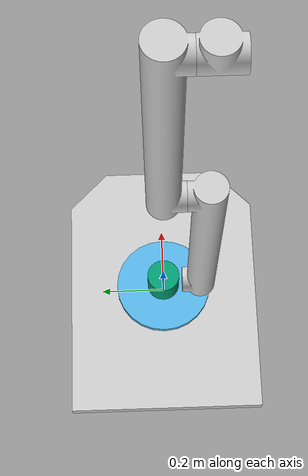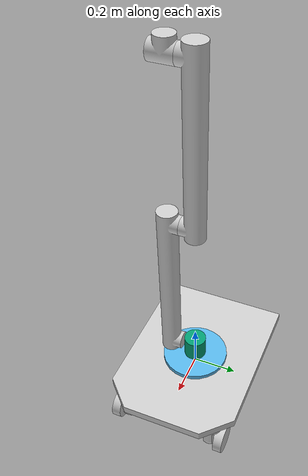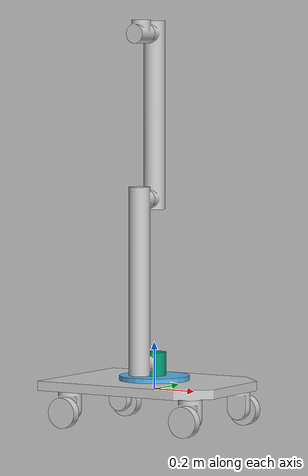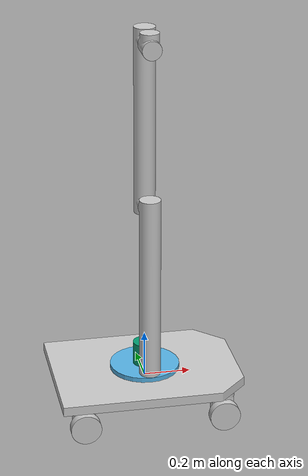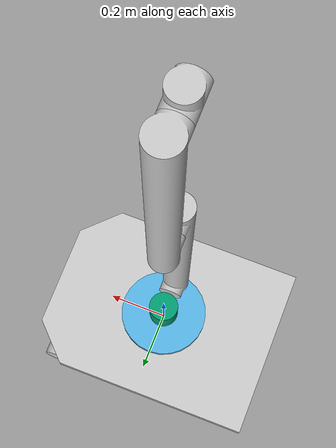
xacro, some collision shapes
<?xml version="1.0" ?>
<robot name="mobile_manipulator" xmlns:xacro="http://ros.org/wiki/xacro">

  <xacro:include filename="$(find robots_description)/urdf/mobile_robot_macro.xacro"/>
  <xacro:mobile_robot prefix=""/>

  <xacro:include filename="$(find robots_description)/urdf/robot_5r_macro.xacro"/>
  <xacro:robot_5r prefix="arm_"/>

  <joint name="base_link_to_arm_base_link" type="fixed">
    <parent link="base_link"/>
    <child link="arm_base_link"/>
    <origin rpy="0.0 0.0 0.0" xyz="0.0 0.0 0.040"/>
  </joint>

</robot>

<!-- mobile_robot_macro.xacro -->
<robot xmlns:xacro="http://www.ros.org/wiki/xacro">

  <xacro:macro name="mobile_robot" params="prefix">

	  <link name="${prefix}base_link">
	    <visual>
	      <!--undercarriage-->
	      <origin rpy="0.0 -0.0 -1.570796326794897" xyz="0.0 0.0 0.0"/>
	      <geometry>
		<mesh filename="package://robots_description/meshes/undercarriage.dae"/>
	      </geometry>
	    </visual>
	    <collision>
	      <origin rpy="0.0 -0.0 -1.570796326794897" xyz="0.0 2.84217e-17 0.0075"/>
	      <geometry>
		<box size="0.3 0.4 0.025"/>
	      </geometry>
	    </collision>
	    <inertial>
	      <mass value="0.0"/>
	      <origin rpy="0.0 -0.0 0.0" xyz="0.0 0.0 0.0"/>
	      <inertia ixx="0.0" ixy="0.0" ixz="0.0" iyy="0.0" iyz="0.0" izz="0.0"/>
	    </inertial>
	  </link>
	  <link name="${prefix}hub_hr">
	    <visual>
	      <!--hub-->
	      <origin rpy="0.0 -0.0 -1.570796326794897" xyz="0.0 0.0 0.0"/>
	      <geometry>
		<mesh filename="package://robots_description/meshes/hub.dae"/>
	      </geometry>
	    </visual>
	    <collision>
	      <origin rpy="0.0 -0.0 -1.570796326794897" xyz="0.0 0.0 0.0325"/>
	      <geometry>
		<box size="0.05 0.05 0.065"/>
	      </geometry>
	    </collision>
	    <inertial>
	      <mass value="0.0"/>
	      <origin rpy="0.0 -0.0 0.0" xyz="0.0 0.0 0.0"/>
	      <inertia ixx="0.0" ixy="0.0" ixz="0.0" iyy="0.0" iyz="0.0" izz="0.0"/>
	    </inertial>
	  </link>
	  <link name="${prefix}hub_hl">
	    <visual>
	      <!--hub-->
	      <origin rpy="0.0 -0.0 -1.570796326794897" xyz="0.0 0.0 0.0"/>
	      <geometry>
		<mesh filename="package://robots_description/meshes/hub.dae"/>
	      </geometry>
	    </visual>
	    <collision>
	      <origin rpy="0.0 -0.0 -1.570796326794897" xyz="0.0 0.0 0.0325"/>
	      <geometry>
		<box size="0.05 0.05 0.065"/>
	      </geometry>
	    </collision>
	    <inertial>
	      <mass value="0.0"/>
	      <origin rpy="0.0 -0.0 0.0" xyz="0.0 0.0 0.0"/>
	      <inertia ixx="0.0" ixy="0.0" ixz="0.0" iyy="0.0" iyz="0.0" izz="0.0"/>
	    </inertial>
	  </link>
	  <link name="${prefix}hub_br">
	    <visual>
	      <!--hub-->
	      <origin rpy="0.0 -0.0 -1.570796326794897" xyz="0.0 0.0 0.0"/>
	      <geometry>
		<mesh filename="package://robots_description/meshes/hub.dae"/>
	      </geometry>
	    </visual>
	    <collision>
	      <origin rpy="0.0 -0.0 -1.570796326794897" xyz="0.0 0.0 0.0325"/>
	      <geometry>
		<box size="0.05 0.05 0.065"/>
	      </geometry>
	    </collision>
	    <inertial>
	      <mass value="0.0"/>
	      <origin rpy="0.0 -0.0 0.0" xyz="0.0 0.0 0.0"/>
	      <inertia ixx="0.0" ixy="0.0" ixz="0.0" iyy="0.0" iyz="0.0" izz="0.0"/>
	    </inertial>
	  </link>
	  <link name="${prefix}hub_bl">
	    <visual>
	      <!--hub-->
	      <origin rpy="0.0 -0.0 -1.570796326794897" xyz="0.0 0.0 0.0"/>
	      <geometry>
		<mesh filename="package://robots_description/meshes/hub.dae"/>
	      </geometry>
	    </visual>
	    <collision>
	      <origin rpy="0.0 -0.0 -1.570796326794897" xyz="0.0 0.0 0.0325"/>
	      <geometry>
		<box size="0.05 0.05 0.065"/>
	      </geometry>
	    </collision>
	    <inertial>
	      <mass value="0.0"/>
	      <origin rpy="0.0 -0.0 0.0" xyz="0.0 0.0 0.0"/>
	      <inertia ixx="0.0" ixy="0.0" ixz="0.0" iyy="0.0" iyz="0.0" izz="0.0"/>
	    </inertial>
	  </link>
	  <link name="${prefix}wheel_hr">
	    <visual>
	      <!--wheel-->
	      <origin rpy="3.141592653589793 -0.0 -1.570796326794897" xyz="0.0 0.0 0.01"/>
	      <geometry>
		<mesh filename="package://robots_description/meshes/wheel.dae"/>
	      </geometry>
	    </visual>
	    <collision>
	      <!--wheel_collision-->
	      <origin rpy="3.141592653589793 -0.0 -1.570796326794897" xyz="0.0 0.0 0.01"/>
	      <geometry>
		<mesh filename="package://robots_description/meshes/wheel_collision.dae"/>
	      </geometry>
	    </collision>
	    <inertial>
	      <mass value="0.0"/>
	      <origin rpy="0.0 -0.0 0.0" xyz="0.0 0.0 0.0"/>
	      <inertia ixx="0.0" ixy="0.0" ixz="0.0" iyy="0.0" iyz="0.0" izz="0.0"/>
	    </inertial>
	  </link>
	  <link name="${prefix}wheel_hl">
	    <visual>
	      <!--wheel-->
	      <origin rpy="3.141592653589793 -0.0 -1.570796326794897" xyz="0.0 0.0 0.01"/>
	      <geometry>
		<mesh filename="package://robots_description/meshes/wheel.dae"/>
	      </geometry>
	    </visual>
	    <collision>
	      <!--wheel_collision-->
	      <origin rpy="3.141592653589793 -0.0 -1.570796326794897" xyz="0.0 0.0 0.01"/>
	      <geometry>
		<mesh filename="package://robots_description/meshes/wheel_collision.dae"/>
	      </geometry>
	    </collision>
	    <inertial>
	      <mass value="0.0"/>
	      <origin rpy="0.0 -0.0 0.0" xyz="0.0 0.0 0.0"/>
	      <inertia ixx="0.0" ixy="0.0" ixz="0.0" iyy="0.0" iyz="0.0" izz="0.0"/>
	    </inertial>
	  </link>
	  <link name="${prefix}wheel_br">
	    <visual>
	      <!--wheel-->
	      <origin rpy="3.141592653589793 -0.0 -1.570796326794897" xyz="0.0 0.0 0.01"/>
	      <geometry>
		<mesh filename="package://robots_description/meshes/wheel.dae"/>
	      </geometry>
	    </visual>
	    <collision>
	      <!--wheel_collision-->
	      <origin rpy="3.141592653589793 -0.0 -1.570796326794897" xyz="0.0 0.0 0.01"/>
	      <geometry>
		<mesh filename="package://robots_description/meshes/wheel_collision.dae"/>
	      </geometry>
	    </collision>
	    <inertial>
	      <mass value="0.0"/>
	      <origin rpy="0.0 -0.0 0.0" xyz="0.0 0.0 0.0"/>
	      <inertia ixx="0.0" ixy="0.0" ixz="0.0" iyy="0.0" iyz="0.0" izz="0.0"/>
	    </inertial>
	  </link>
	  <link name="${prefix}wheel_bl">
	    <visual>
	      <!--wheel-->
	      <origin rpy="3.141592653589793 -0.0 -1.570796326794897" xyz="0.0 0.0 0.01"/>
	      <geometry>
		<mesh filename="package://robots_description/meshes/wheel.dae"/>
	      </geometry>
	    </visual>
	    <collision>
	      <!--wheel_collision-->
	      <origin rpy="3.141592653589793 -0.0 -1.570796326794897" xyz="0.0 0.0 0.01"/>
	      <geometry>
		<mesh filename="package://robots_description/meshes/wheel_collision.dae"/>
	      </geometry>
	    </collision>
	    <inertial>
	      <mass value="0.0"/>
	      <origin rpy="0.0 -0.0 0.0" xyz="0.0 0.0 0.0"/>
	      <inertia ixx="0.0" ixy="0.0" ixz="0.0" iyy="0.0" iyz="0.0" izz="0.0"/>
	    </inertial>
	  </link>
	  <joint name="${prefix}base_link-hub_hr" type="revolute">
	    <parent link="${prefix}base_link"/>
	    <child link="${prefix}hub_hr"/>
	    <origin rpy="3.141592653589793 -0.0 0.0" xyz="-0.3 -0.2 -0.005"/>
	    <axis xyz="0 0 1"/>
	    <limit effort="0.0" lower="0.0" upper="0.0" velocity="0.0"/>
	  </joint>
	  <joint name="${prefix}base_link-hub_hl" type="revolute">
	    <parent link="${prefix}base_link"/>
	    <child link="${prefix}hub_hl"/>
	    <origin rpy="3.141592653589793 1.224646799147353e-16 3.141592653589793" xyz="-0.3 0.2 -0.005"/>
	    <axis xyz="0 0 1"/>
	    <limit effort="0.0" lower="0.0" upper="0.0" velocity="0.0"/>
	  </joint>
	  <joint name="${prefix}base_link-hub_br" type="revolute">
	    <parent link="${prefix}base_link"/>
	    <child link="${prefix}hub_br"/>
	    <origin rpy="3.141592653589793 -0.0 0.0" xyz="0.3 -0.2 -0.005"/>
	    <axis xyz="0 0 1"/>
	    <limit effort="0.0" lower="0.0" upper="0.0" velocity="0.0"/>
	  </joint>
	  <joint name="${prefix}base_link-hub_bl" type="revolute">
	    <parent link="${prefix}base_link"/>
	    <child link="${prefix}hub_bl"/>
	    <origin rpy="3.141592653589793 1.224646799147353e-16 3.141592653589793" xyz="0.3 0.2 -0.005"/>
	    <axis xyz="0 0 1"/>
	    <limit effort="0.0" lower="0.0" upper="0.0" velocity="0.0"/>
	  </joint>
	  <joint name="${prefix}hub_hr-wheel_hr" type="revolute">
	    <parent link="${prefix}hub_hr"/>
	    <child link="${prefix}wheel_hr"/>
	    <origin rpy="-1.570796326794897 -0.0 0.0" xyz="0.0 0.02 0.09"/>
	    <axis xyz="0 0 1"/>
	    <limit effort="0.0" lower="0.0" upper="0.0" velocity="0.0"/>
	  </joint>
	  <joint name="${prefix}hub_hl-wheel_hl" type="revolute">
	    <parent link="${prefix}hub_hl"/>
	    <child link="${prefix}wheel_hl"/>
	    <origin rpy="-1.570796326794897 -0.0 0.0" xyz="0.0 0.02 0.09"/>
	    <axis xyz="0 0 1"/>
	    <limit effort="0.0" lower="0.0" upper="0.0" velocity="0.0"/>
	  </joint>
	  <joint name="${prefix}hub_br-wheel_br" type="revolute">
	    <parent link="${prefix}hub_br"/>
	    <child link="${prefix}wheel_br"/>
	    <origin rpy="-1.570796326794897 -0.0 0.0" xyz="0.0 0.02 0.09"/>
	    <axis xyz="0 0 1"/>
	    <limit effort="0.0" lower="0.0" upper="0.0" velocity="0.0"/>
	  </joint>
	  <joint name="${prefix}hub_bl-wheel_bl" type="revolute">
	    <parent link="${prefix}hub_bl"/>
	    <child link="${prefix}wheel_bl"/>
	    <origin rpy="-1.570796326794897 -0.0 0.0" xyz="0.0 0.02 0.09"/>
	    <axis xyz="0 0 1"/>
	    <limit effort="0.0" lower="0.0" upper="0.0" velocity="0.0"/>
	  </joint>

  </xacro:macro>

</robot>

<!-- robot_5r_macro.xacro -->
<robot xmlns:xacro="http://www.ros.org/wiki/xacro">

  <xacro:macro name="robot_5r" params="prefix">

    <link name="${prefix}base_link">
      <visual>
        <origin rpy="0.0 0.0 0.0" xyz="0.0 0.0 0.010"/>
        <geometry>
          <cylinder length="0.020" radius="0.150"/>
        </geometry>
      </visual>
      <collision>
        <origin rpy="0.0 0.0 0.0" xyz="0.0 0.0 0.010"/>
        <geometry>
          <cylinder length="0.020" radius="0.150"/>
        </geometry>
      </collision>
    </link>

    <link name="${prefix}shoulder">
      <visual>
        <origin rpy="0.0 0.0 0.0" xyz="0.0 0.0 0.0"/>
        <geometry>
          <mesh filename="package://robots_description/meshes/shoulder.dae"/>
        </geometry>
      </visual>
      <collision>
        <origin rpy="0.0 0.0 0.0" xyz="0.0 0.0 0.050"/>
        <geometry>
          <cylinder length="0.100" radius="0.050"/>
        </geometry>
      </collision>
    </link>

    <link name="${prefix}arm">
      <visual>
        <origin rpy="${-pi / 2.0} 0.0 0.0" xyz="0.0 -0.045 0.06"/>
        <geometry>
          <mesh filename="package://robots_description/meshes/arm.dae"/>
        </geometry>
      </visual>
      <collision>
        <origin rpy="${-pi / 2.0} 0.0 0.0" xyz="0.0 0.355 0.0523359"/>
        <geometry>
          <box size="0.090 0.105 0.800"/>
        </geometry>
      </collision>
    </link>

    <link name="${prefix}forearm">
      <visual>
        <origin rpy="${-pi / 2.0} 0.0 ${pi}" xyz="0.0 0.045 0.060"/>
        <geometry>
          <mesh filename="package://robots_description/meshes/arm.dae"/>
        </geometry>
      </visual>
      <collision>
        <origin rpy="${-pi / 2.0} 0.0 ${pi}" xyz="0.0 -0.355 0.0523359"/>
        <geometry>
          <box size="0.090 0.105 0.800"/>
        </geometry>
      </collision>
    </link>

    <link name="${prefix}hand">
      <visual>
        <origin rpy="0.0 0.0 0.0" xyz="0.0 0.0 0.0"/>
        <geometry>
          <mesh filename="package://robots_description/meshes/hand.dae"/>
        </geometry>
      </visual>
      <collision>
        <origin rpy="0.0 0.0 0.0" xyz="0.0 -0.0101 0.050"/>
        <geometry>
          <box size="0.080 0.100 0.100"/>
        </geometry>
      </collision>
    </link>

    <joint name="${prefix}base-shoulder" type="revolute">
      <parent link="${prefix}base_link"/>
      <child link="${prefix}shoulder"/>
      <origin rpy="0.0 0.0 0.0" xyz="0.0 0.0 0.020"/>
      <axis xyz="0 0 1"/>
      <limit effort="20.0" lower="${-pi}" upper="${pi}" velocity="1.0"/>
    </joint>

    <joint name="${prefix}shoulder-arm" type="revolute">
      <parent link="${prefix}shoulder"/>
      <child link="${prefix}arm"/>
      <origin rpy="${pi / 2.0} 0.0 0.0" xyz="0.0 -0.060 0.055"/>
      <axis xyz="0 0 1"/>
      <limit effort="50.0" lower="${-pi / 2.0}" upper="${pi / 2.0}" velocity="1.0"/>
    </joint>

    <joint name="${prefix}arm-forearm" type="revolute">
      <parent link="${prefix}arm"/>
      <child link="${prefix}forearm"/>
      <origin rpy="${pi} 0.0 0.0" xyz="0.0 0.700 0.0"/>
      <axis xyz="0 0 1"/>
      <limit effort="25.0" lower="${-radians(160)}" upper="${radians(160)}" velocity="1.0"/>
    </joint>

    <joint name="${prefix}forearm-hand" type="revolute">
      <parent link="${prefix}forearm"/>
      <child link="${prefix}hand"/>
      <origin rpy="${pi} 0.0 ${pi}" xyz="0.0 -0.700 0.0"/>
      <axis xyz="0 0 1"/>
      <limit effort="10.0" lower="${-pi}" upper="${pi}" velocity="1.0"/>
    </joint>

  </xacro:macro>

</robot>
